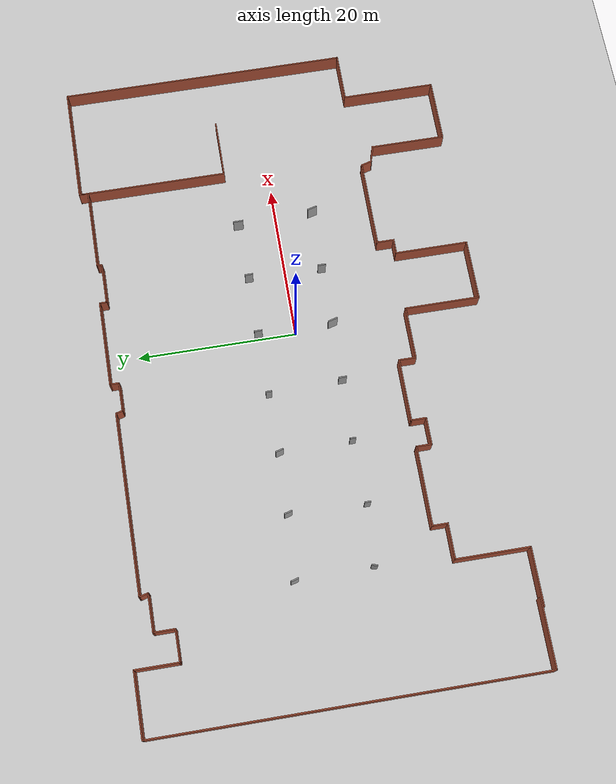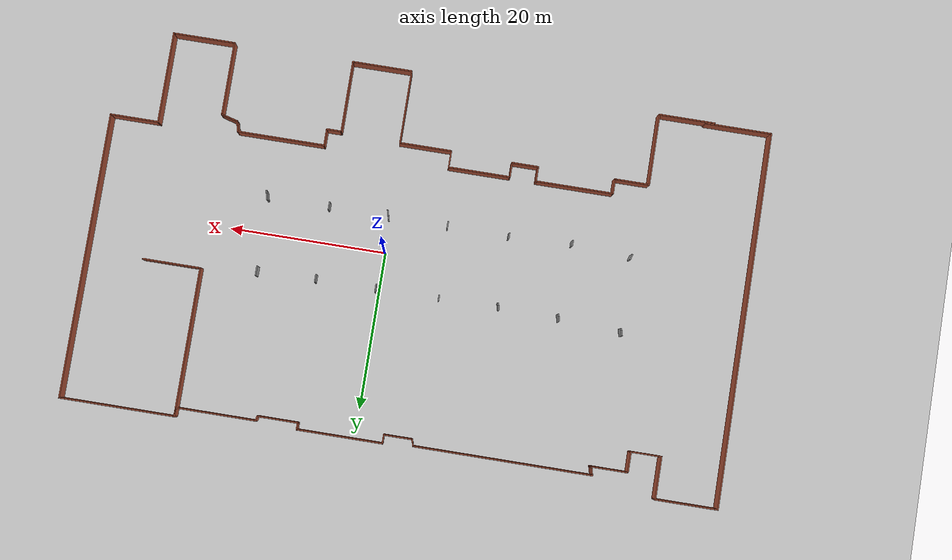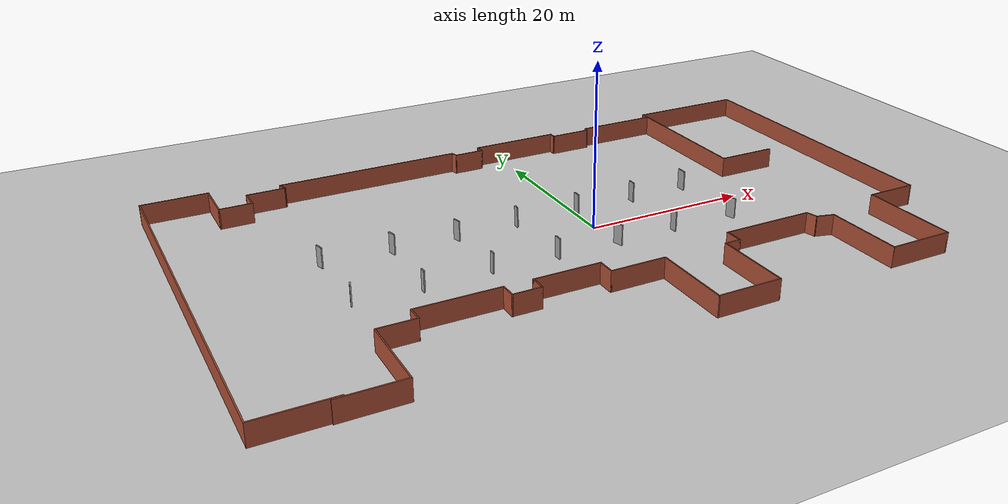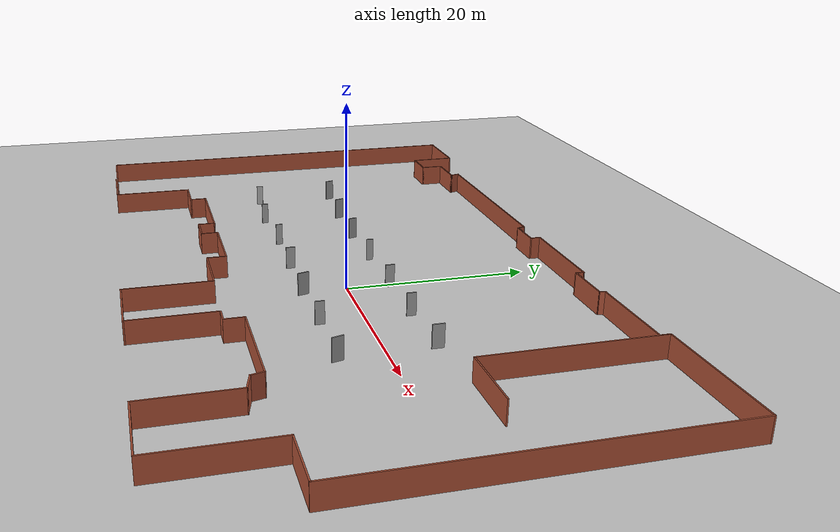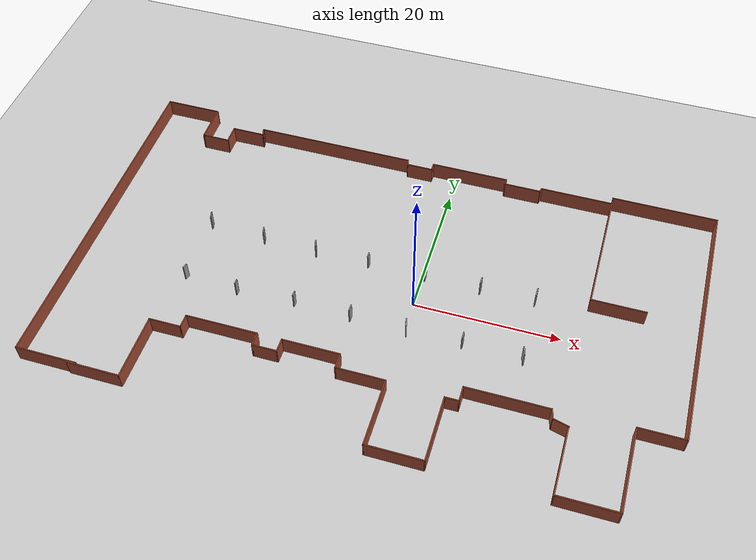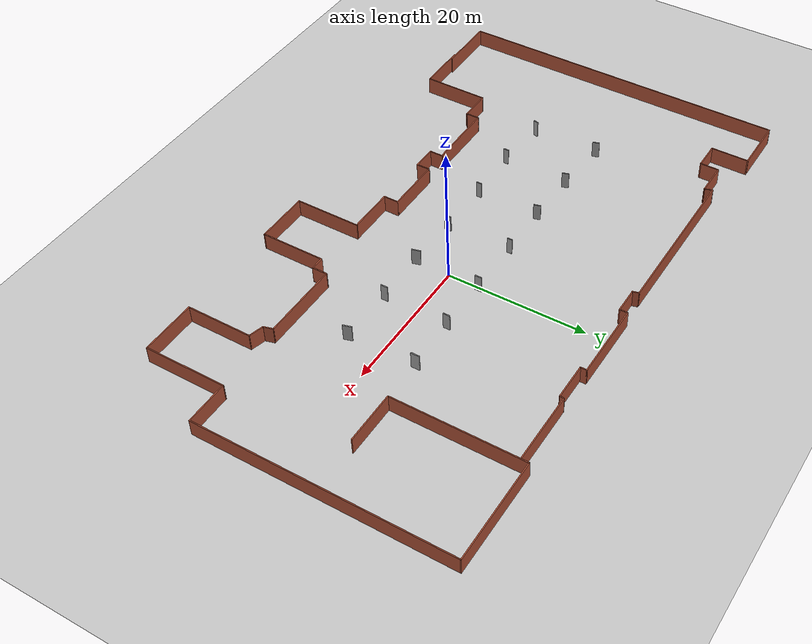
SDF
<sdf version="1.6">
 <world name="default">
  <plugin name="gazebo_connection_plugin" filename="libgazebo_connection_plugin.so"/>
  <light name="sun" type="directional">
   <pose>0 0 10 0 -0 0</pose>
   <diffuse>0.8 0.8 0.8 1</diffuse>
   <specular>0.2 0.2 0.2 1</specular>
   <attenuation>
    <range>1000</range>
    <constant>0.9</constant>
    <linear>0.01</linear>
    <quadratic>0.001</quadratic>
   </attenuation>
   <direction>-0.5 0.1 -0.9</direction>
  </light>
  <model name="ground_plane">
   <static>1</static>
   <link name="link">
    <collision name="collision">
     <geometry><plane><normal>0 0 1</normal><size>100 100</size></plane></geometry>
     <surface><friction><ode><mu>100</mu><mu2>50</mu2></ode></friction></surface>
    </collision>
    <visual name="visual">
     <cast_shadows>0</cast_shadows>
     <geometry><plane><normal>0 0 1</normal><size>100 100</size></plane></geometry>
     <material>
      <script><uri>file://media/materials/scripts/gazebo.material</uri><name>Gazebo/Grey</name></script>
     </material>
    </visual>
   </link>
  </model>
  <gravity>0 0 -9.8</gravity>
  <magnetic_field>6e-06 2.3e-05 -4.2e-05</magnetic_field>
  <atmosphere type="adiabatic"/>
  <physics name="default_physics" default="0" type="ode">
   <max_step_size>0.001</max_step_size>
   <real_time_factor>1</real_time_factor>
   <real_time_update_rate>1000</real_time_update_rate>
  </physics>
  <scene><ambient>0.4 0.4 0.4 1</ambient><background>0.7 0.7 0.7 1</background><shadows>1</shadows></scene>
  <spherical_coordinates>
   <surface_model>EARTH_WGS84</surface_model>
   <latitude_deg>0</latitude_deg>
   <longitude_deg>0</longitude_deg>
   <elevation>0</elevation>
   <heading_deg>0</heading_deg>
  </spherical_coordinates>
  <model name="envD">
   <pose>-4.40285 0.889359 0 0 -0 0</pose>
   <link name="Wall_15">
    <collision name="Wall_15_Collision">
     <geometry><box><size>7.25 0.15 2.5</size></box></geometry>
     <pose>0 0 1.25 0 -0 0</pose>
    </collision>
    <visual name="Wall_15_Visual">
     <pose>0 0 1.25 0 -0 0</pose>
     <geometry><box><size>7.25 0.15 2.5</size></box></geometry>
     <material>
      <script><uri>file://media/materials/scripts/gazebo.material</uri><name>Gazebo/Bricks</name></script>
      <ambient>1 1 1 1</ambient>
     </material>
     <meta><layer>0</layer></meta>
    </visual>
    <pose>-30.8076 -23.7657 0 0 -0 0</pose>
   </link>
   <link name="Wall_16">
    <collision name="Wall_16_Collision">
     <geometry><box><size>9.25 0.15 2.5</size></box></geometry>
     <pose>0 0 1.25 0 -0 0</pose>
    </collision>
    <visual name="Wall_16_Visual">
     <pose>0 0 1.25 0 -0 0</pose>
     <geometry><box><size>9.25 0.15 2.5</size></box></geometry>
     <material>
      <script><uri>file://media/materials/scripts/gazebo.material</uri><name>Gazebo/Bricks</name></script>
      <ambient>1 1 1 1</ambient>
     </material>
     <meta><layer>0</layer></meta>
    </visual>
    <pose>-27.2576 -19.2157 0 0 -0 1.5708</pose>
   </link>
   <link name="Wall_17">
    <collision name="Wall_17_Collision">
     <geometry><box><size>4.5 0.15 2.5</size></box></geometry>
     <pose>0 0 1.25 0 -0 0</pose>
    </collision>
    <visual name="Wall_17_Visual">
     <pose>0 0 1.25 0 -0 0</pose>
     <geometry><box><size>4.5 0.15 2.5</size></box></geometry>
     <material>
      <script><uri>file://media/materials/scripts/gazebo.material</uri><name>Gazebo/Bricks</name></script>
      <ambient>1 1 1 1</ambient>
     </material>
     <meta><layer>0</layer></meta>
    </visual>
    <pose>-25.0826 -14.6657 0 0 -0 0</pose>
   </link>
   <link name="Wall_18">
    <collision name="Wall_18_Collision">
     <geometry><box><size>2 0.15 2.5</size></box></geometry>
     <pose>0 0 1.25 0 -0 0</pose>
    </collision>
    <visual name="Wall_18_Visual">
     <pose>0 0 1.25 0 -0 0</pose>
     <geometry><box><size>2 0.15 2.5</size></box></geometry>
     <material>
      <script><uri>file://media/materials/scripts/gazebo.material</uri><name>Gazebo/Bricks</name></script>
      <ambient>1 1 1 1</ambient>
     </material>
     <meta><layer>0</layer></meta>
    </visual>
    <pose>-22.9076 -13.7407 0 0 -0 1.5708</pose>
   </link>
   <link name="Wall_19">
    <collision name="Wall_19_Collision">
     <geometry><box><size>10 0.15 2.5</size></box></geometry>
     <pose>0 0 1.25 0 -0 0</pose>
    </collision>
    <visual name="Wall_19_Visual">
     <pose>0 0 1.25 0 -0 0</pose>
     <geometry><box><size>10 0.15 2.5</size></box></geometry>
     <material>
      <script><uri>file://media/materials/scripts/gazebo.material</uri><name>Gazebo/Bricks</name></script>
      <ambient>1 1 1 1</ambient>
     </material>
     <meta><layer>0</layer></meta>
    </visual>
    <pose>-17.9826 -12.8157 0 0 -0 0</pose>
   </link>
   <link name="Wall_20">
    <collision name="Wall_20_Collision">
     <geometry><box><size>2 0.15 2.5</size></box></geometry>
     <pose>0 0 1.25 0 -0 0</pose>
    </collision>
    <visual name="Wall_20_Visual">
     <pose>0 0 1.25 0 -0 0</pose>
     <geometry><box><size>2 0.15 2.5</size></box></geometry>
     <material>
      <script><uri>file://media/materials/scripts/gazebo.material</uri><name>Gazebo/Bricks</name></script>
      <ambient>1 1 1 1</ambient>
     </material>
     <meta><layer>0</layer></meta>
    </visual>
    <pose>-13.0576 -13.7407 0 0 0 -1.5708</pose>
   </link>
   <link name="Wall_21">
    <collision name="Wall_21_Collision">
     <geometry><box><size>3.5 0.15 2.5</size></box></geometry>
     <pose>0 0 1.25 0 -0 0</pose>
    </collision>
    <visual name="Wall_21_Visual">
     <pose>0 0 1.25 0 -0 0</pose>
     <geometry><box><size>3.5 0.15 2.5</size></box></geometry>
     <material>
      <script><uri>file://media/materials/scripts/gazebo.material</uri><name>Gazebo/Bricks</name></script>
      <ambient>1 1 1 1</ambient>
     </material>
     <meta><layer>0</layer></meta>
    </visual>
    <pose>-11.3826 -14.6657 0 0 -0 0</pose>
   </link>
   <link name="Wall_22">
    <collision name="Wall_22_Collision">
     <geometry><box><size>2 0.15 2.5</size></box></geometry>
     <pose>0 0 1.25 0 -0 0</pose>
    </collision>
    <visual name="Wall_22_Visual">
     <pose>0 0 1.25 0 -0 0</pose>
     <geometry><box><size>2 0.15 2.5</size></box></geometry>
     <material>
      <script><uri>file://media/materials/scripts/gazebo.material</uri><name>Gazebo/Bricks</name></script>
      <ambient>1 1 1 1</ambient>
     </material>
     <meta><layer>0</layer></meta>
    </visual>
    <pose>-9.70756 -13.7407 0 0 -0 1.5708</pose>
   </link>
   <link name="Wall_23">
    <collision name="Wall_23_Collision">
     <geometry><box><size>8 0.15 2.5</size></box></geometry>
     <pose>0 0 1.25 0 -0 0</pose>
    </collision>
    <visual name="Wall_23_Visual">
     <pose>0 0 1.25 0 -0 0</pose>
     <geometry><box><size>8 0.15 2.5</size></box></geometry>
     <material>
      <script><uri>file://media/materials/scripts/gazebo.material</uri><name>Gazebo/Bricks</name></script>
      <ambient>1 1 1 1</ambient>
     </material>
     <meta><layer>0</layer></meta>
    </visual>
    <pose>-5.78256 -12.8157 0 0 -0 0</pose>
   </link>
   <link name="Wall_24">
    <collision name="Wall_24_Collision">
     <geometry><box><size>2.25 0.15 2.5</size></box></geometry>
     <pose>0 0 1.25 0 -0 0</pose>
    </collision>
    <visual name="Wall_24_Visual">
     <pose>0 0 1.25 0 -0 0</pose>
     <geometry><box><size>2.25 0.15 2.5</size></box></geometry>
     <material>
      <script><uri>file://media/materials/scripts/gazebo.material</uri><name>Gazebo/Bricks</name></script>
      <ambient>1 1 1 1</ambient>
     </material>
     <meta><layer>0</layer></meta>
    </visual>
    <pose>-1.85756 -13.8657 0 0 0 -1.5708</pose>
   </link>
   <link name="Wall_25">
    <collision name="Wall_25_Collision">
     <geometry><box><size>6.75 0.15 2.5</size></box></geometry>
     <pose>0 0 1.25 0 -0 0</pose>
    </collision>
    <visual name="Wall_25_Visual">
     <pose>0 0 1.25 0 -0 0</pose>
     <geometry><box><size>6.75 0.15 2.5</size></box></geometry>
     <material>
      <script><uri>file://media/materials/scripts/gazebo.material</uri><name>Gazebo/Bricks</name></script>
      <ambient>1 1 1 1</ambient>
     </material>
     <meta><layer>0</layer></meta>
    </visual>
    <pose>1.44244 -14.9157 0 0 -0 0</pose>
   </link>
   <link name="Wall_26">
    <collision name="Wall_26_Collision">
     <geometry><box><size>9.5 0.15 2.5</size></box></geometry>
     <pose>0 0 1.25 0 -0 0</pose>
    </collision>
    <visual name="Wall_26_Visual">
     <pose>0 0 1.25 0 -0 0</pose>
     <geometry><box><size>9.5 0.15 2.5</size></box></geometry>
     <material>
      <script><uri>file://media/materials/scripts/gazebo.material</uri><name>Gazebo/Bricks</name></script>
      <ambient>1 1 1 1</ambient>
     </material>
     <meta><layer>0</layer></meta>
    </visual>
    <pose>4.74244 -19.5907 0 0 0 -1.5708</pose>
   </link>
   <link name="Wall_27">
    <collision name="Wall_27_Collision">
     <geometry><box><size>7.75 0.15 2.5</size></box></geometry>
     <pose>0 0 1.25 0 -0 0</pose>
    </collision>
    <visual name="Wall_27_Visual">
     <pose>0 0 1.25 0 -0 0</pose>
     <geometry><box><size>7.75 0.15 2.5</size></box></geometry>
     <material>
      <script><uri>file://media/materials/scripts/gazebo.material</uri><name>Gazebo/Bricks</name></script>
      <ambient>1 1 1 1</ambient>
     </material>
     <meta><layer>0</layer></meta>
    </visual>
    <pose>8.54244 -24.2657 0 0 -0 0</pose>
   </link>
   <link name="Wall_28">
    <collision name="Wall_28_Collision">
     <geometry><box><size>9.25 0.15 2.5</size></box></geometry>
     <pose>0 0 1.25 0 -0 0</pose>
    </collision>
    <visual name="Wall_28_Visual">
     <pose>0 0 1.25 0 -0 0</pose>
     <geometry><box><size>9.25 0.15 2.5</size></box></geometry>
     <material>
      <script><uri>file://media/materials/scripts/gazebo.material</uri><name>Gazebo/Bricks</name></script>
      <ambient>1 1 1 1</ambient>
     </material>
     <meta><layer>0</layer></meta>
    </visual>
    <pose>12.3424 -19.7157 0 0 -0 1.5708</pose>
   </link>
   <link name="Wall_29">
    <collision name="Wall_29_Collision">
     <geometry><box><size>2 0.15 2.5</size></box></geometry>
     <pose>0 0 1.25 0 -0 0</pose>
    </collision>
    <visual name="Wall_29_Visual">
     <pose>0 0 1.25 0 -0 0</pose>
     <geometry><box><size>2 0.15 2.5</size></box></geometry>
     <material>
      <script><uri>file://media/materials/scripts/gazebo.material</uri><name>Gazebo/Bricks</name></script>
      <ambient>1 1 1 1</ambient>
     </material>
     <meta><layer>0</layer></meta>
    </visual>
    <pose>13.2674 -15.1657 0 0 -0 0</pose>
   </link>
   <link name="Wall_30">
    <collision name="Wall_30_Collision">
     <geometry><box><size>2.25 0.15 2.5</size></box></geometry>
     <pose>0 0 1.25 0 -0 0</pose>
    </collision>
    <visual name="Wall_30_Visual">
     <pose>0 0 1.25 0 -0 0</pose>
     <geometry><box><size>2.25 0.15 2.5</size></box></geometry>
     <material>
      <script><uri>file://media/materials/scripts/gazebo.material</uri><name>Gazebo/Bricks</name></script>
      <ambient>1 1 1 1</ambient>
     </material>
     <meta><layer>0</layer></meta>
    </visual>
    <pose>14.1924 -14.1157 0 0 -0 1.5708</pose>
   </link>
   <link name="Wall_31">
    <collision name="Wall_31_Collision">
     <geometry><box><size>11.25 0.15 2.5</size></box></geometry>
     <pose>0 0 1.25 0 -0 0</pose>
    </collision>
    <visual name="Wall_31_Visual">
     <pose>0 0 1.25 0 -0 0</pose>
     <geometry><box><size>11.25 0.15 2.5</size></box></geometry>
     <material>
      <script><uri>file://media/materials/scripts/gazebo.material</uri><name>Gazebo/Bricks</name></script>
      <ambient>1 1 1 1</ambient>
     </material>
     <meta><layer>0</layer></meta>
    </visual>
    <pose>19.7424 -13.0657 0 0 -0 0</pose>
   </link>
   <link name="Wall_32">
    <collision name="Wall_32_Collision">
     <geometry><box><size>1.5 0.15 2.5</size></box></geometry>
     <pose>0 0 1.25 0 -0 0</pose>
    </collision>
    <visual name="Wall_32_Visual">
     <pose>0 0 1.25 0 -0 0</pose>
     <geometry><box><size>1.5 0.15 2.5</size></box></geometry>
     <material>
      <script><uri>file://media/materials/scripts/gazebo.material</uri><name>Gazebo/Bricks</name></script>
      <ambient>1 1 1 1</ambient>
     </material>
     <meta><layer>0</layer></meta>
    </visual>
    <pose>25.4671 -13.7177 0 0 0 -1.309</pose>
   </link>
   <link name="Wall_33">
    <collision name="Wall_33_Collision">
     <geometry><box><size>2.25 0.15 2.5</size></box></geometry>
     <pose>0 0 1.25 0 -0 0</pose>
    </collision>
    <visual name="Wall_33_Visual">
     <pose>0 0 1.25 0 -0 0</pose>
     <geometry><box><size>2.25 0.15 2.5</size></box></geometry>
     <material>
      <script><uri>file://media/materials/scripts/gazebo.material</uri><name>Gazebo/Bricks</name></script>
      <ambient>1 1 1 1</ambient>
     </material>
     <meta><layer>0</layer></meta>
    </visual>
    <pose>26.6561 -14.6415 0 0 0 -0.261799</pose>
   </link>
   <link name="Wall_34">
    <collision name="Wall_34_Collision">
     <geometry><box><size>9.5 0.15 2.5</size></box></geometry>
     <pose>0 0 1.25 0 -0 0</pose>
    </collision>
    <visual name="Wall_34_Visual">
     <pose>0 0 1.25 0 -0 0</pose>
     <geometry><box><size>9.5 0.15 2.5</size></box></geometry>
     <material>
      <script><uri>file://media/materials/scripts/gazebo.material</uri><name>Gazebo/Bricks</name></script>
      <ambient>1 1 1 1</ambient>
     </material>
     <meta><layer>0</layer></meta>
    </visual>
    <pose>27.6703 -19.5882 0 0 0 -1.5708</pose>
   </link>
   <link name="Wall_35">
    <collision name="Wall_35_Collision">
     <geometry><box><size>8 0.15 2.5</size></box></geometry>
     <pose>0 0 1.25 0 -0 0</pose>
    </collision>
    <visual name="Wall_35_Visual">
     <pose>0 0 1.25 0 -0 0</pose>
     <geometry><box><size>8 0.15 2.5</size></box></geometry>
     <material>
      <script><uri>file://media/materials/scripts/gazebo.material</uri><name>Gazebo/Bricks</name></script>
      <ambient>1 1 1 1</ambient>
     </material>
     <meta><layer>0</layer></meta>
    </visual>
    <pose>31.5953 -24.2632 0 0 -0 0</pose>
   </link>
   <link name="Wall_36">
    <collision name="Wall_36_Collision">
     <geometry><box><size>11.75 0.15 2.5</size></box></geometry>
     <pose>0 0 1.25 0 -0 0</pose>
    </collision>
    <visual name="Wall_36_Visual">
     <pose>0 0 1.25 0 -0 0</pose>
     <geometry><box><size>11.75 0.15 2.5</size></box></geometry>
     <material>
      <script><uri>file://media/materials/scripts/gazebo.material</uri><name>Gazebo/Bricks</name></script>
      <ambient>1 1 1 1</ambient>
     </material>
     <meta><layer>0</layer></meta>
    </visual>
    <pose>35.5203 -18.4632 0 0 -0 1.5708</pose>
   </link>
   <link name="Wall_37">
    <collision name="Wall_37_Collision">
     <geometry><box><size>6.25 0.15 2.5</size></box></geometry>
     <pose>0 0 1.25 0 -0 0</pose>
    </collision>
    <visual name="Wall_37_Visual">
     <pose>0 0 1.25 0 -0 0</pose>
     <geometry><box><size>6.25 0.15 2.5</size></box></geometry>
     <material>
      <script><uri>file://media/materials/scripts/gazebo.material</uri><name>Gazebo/Bricks</name></script>
      <ambient>1 1 1 1</ambient>
     </material>
     <meta><layer>0</layer></meta>
    </visual>
    <pose>38.5703 -12.6632 0 0 -0 0</pose>
   </link>
   <link name="Wall_38">
    <collision name="Wall_38_Collision">
     <geometry><box><size>36.5 0.15 2.5</size></box></geometry>
     <pose>0 0 1.25 0 -0 0</pose>
    </collision>
    <visual name="Wall_38_Visual">
     <pose>0 0 1.25 0 -0 0</pose>
     <geometry><box><size>36.5 0.15 2.5</size></box></geometry>
     <material>
      <script><uri>file://media/materials/scripts/gazebo.material</uri><name>Gazebo/Bricks</name></script>
      <ambient>1 1 1 1</ambient>
     </material>
     <meta><layer>0</layer></meta>
    </visual>
    <pose>41.6203 5.51176 0 0 -0 1.5708</pose>
   </link>
   <link name="Wall_39">
    <collision name="Wall_39_Collision">
     <geometry><box><size>14.75 0.15 2.5</size></box></geometry>
     <pose>0 0 1.25 0 -0 0</pose>
    </collision>
    <visual name="Wall_39_Visual">
     <pose>0 0 1.25 0 -0 0</pose>
     <geometry><box><size>14.75 0.15 2.5</size></box></geometry>
     <material>
      <script><uri>file://media/materials/scripts/gazebo.material</uri><name>Gazebo/Bricks</name></script>
      <ambient>1 1 1 1</ambient>
     </material>
     <meta><layer>0</layer></meta>
    </visual>
    <pose>34.3203 23.6868 0 0 -0 3.14159</pose>
   </link>
   <link name="Wall_40">
    <collision name="Wall_40_Collision">
     <geometry><box><size>1.25 0.15 2.5</size></box></geometry>
     <pose>0 0 1.25 0 -0 0</pose>
    </collision>
    <visual name="Wall_40_Visual">
     <pose>0 0 1.25 0 -0 0</pose>
     <geometry><box><size>1.25 0.15 2.5</size></box></geometry>
     <material>
      <script><uri>file://media/materials/scripts/gazebo.material</uri><name>Gazebo/Bricks</name></script>
      <ambient>1 1 1 1</ambient>
     </material>
     <meta><layer>0</layer></meta>
    </visual>
    <pose>27.0203 23.1368 0 0 0 -1.5708</pose>
   </link>
   <link name="Wall_41">
    <collision name="Wall_41_Collision">
     <geometry><box><size>10.25 0.15 2.5</size></box></geometry>
     <pose>0 0 1.25 0 -0 0</pose>
    </collision>
    <visual name="Wall_41_Visual">
     <pose>0 0 1.25 0 -0 0</pose>
     <geometry><box><size>10.25 0.15 2.5</size></box></geometry>
     <material>
      <script><uri>file://media/materials/scripts/gazebo.material</uri><name>Gazebo/Bricks</name></script>
      <ambient>1 1 1 1</ambient>
     </material>
     <meta><layer>0</layer></meta>
    </visual>
    <pose>21.9703 22.5868 0 0 -0 3.14159</pose>
   </link>
   <link name="Wall_42">
    <collision name="Wall_42_Collision">
     <geometry><box><size>0.75 0.15 2.5</size></box></geometry>
     <pose>0 0 1.25 0 -0 0</pose>
    </collision>
    <visual name="Wall_42_Visual">
     <pose>0 0 1.25 0 -0 0</pose>
     <geometry><box><size>0.75 0.15 2.5</size></box></geometry>
     <material>
      <script><uri>file://media/materials/scripts/gazebo.material</uri><name>Gazebo/Bricks</name></script>
      <ambient>1 1 1 1</ambient>
     </material>
     <meta><layer>0</layer></meta>
    </visual>
    <pose>16.8426 22.297 0 0 0 -1.8326</pose>
   </link>
   <link name="Wall_43">
    <collision name="Wall_43_Collision">
     <geometry><box><size>5.25 0.15 2.5</size></box></geometry>
     <pose>0 0 1.25 0 -0 0</pose>
    </collision>
    <visual name="Wall_43_Visual">
     <pose>0 0 1.25 0 -0 0</pose>
     <geometry><box><size>5.25 0.15 2.5</size></box></geometry>
     <material>
      <script><uri>file://media/materials/scripts/gazebo.material</uri><name>Gazebo/Bricks</name></script>
      <ambient>1 1 1 1</ambient>
     </material>
     <meta><layer>0</layer></meta>
    </visual>
    <pose>14.215 22.0072 0 0 -0 3.14159</pose>
   </link>
   <link name="Wall_44">
    <collision name="Wall_44_Collision">
     <geometry><box><size>1 0.15 2.5</size></box></geometry>
     <pose>0 0 1.25 0 -0 0</pose>
    </collision>
    <visual name="Wall_44_Visual">
     <pose>0 0 1.25 0 -0 0</pose>
     <geometry><box><size>1 0.15 2.5</size></box></geometry>
     <material>
      <script><uri>file://media/materials/scripts/gazebo.material</uri><name>Gazebo/Bricks</name></script>
      <ambient>1 1 1 1</ambient>
     </material>
     <meta><layer>0</layer></meta>
    </visual>
    <pose>11.665 22.4322 0 0 -0 1.5708</pose>
   </link>
   <link name="Wall_45">
    <collision name="Wall_45_Collision">
     <geometry><box><size>11 0.15 2.5</size></box></geometry>
     <pose>0 0 1.25 0 -0 0</pose>
    </collision>
    <visual name="Wall_45_Visual">
     <pose>0 0 1.25 0 -0 0</pose>
     <geometry><box><size>11 0.15 2.5</size></box></geometry>
     <material>
      <script><uri>file://media/materials/scripts/gazebo.material</uri><name>Gazebo/Bricks</name></script>
      <ambient>1 1 1 1</ambient>
     </material>
     <meta><layer>0</layer></meta>
    </visual>
    <pose>6.24 22.8572 0 0 -0 3.14159</pose>
   </link>
   <link name="Wall_46">
    <collision name="Wall_46_Collision">
     <geometry><box><size>1.25 0.15 2.5</size></box></geometry>
     <pose>0 0 1.25 0 -0 0</pose>
    </collision>
    <visual name="Wall_46_Visual">
     <pose>0 0 1.25 0 -0 0</pose>
     <geometry><box><size>1.25 0.15 2.5</size></box></geometry>
     <material>
      <script><uri>file://media/materials/scripts/gazebo.material</uri><name>Gazebo/Bricks</name></script>
      <ambient>1 1 1 1</ambient>
     </material>
     <meta><layer>0</layer></meta>
    </visual>
    <pose>0.815003 22.3072 0 0 0 -1.5708</pose>
   </link>
   <link name="Wall_47">
    <collision name="Wall_47_Collision">
     <geometry><box><size>3.75 0.15 2.5</size></box></geometry>
     <pose>0 0 1.25 0 -0 0</pose>
    </collision>
    <visual name="Wall_47_Visual">
     <pose>0 0 1.25 0 -0 0</pose>
     <geometry><box><size>3.75 0.15 2.5</size></box></geometry>
     <material>
      <script><uri>file://media/materials/scripts/gazebo.material</uri><name>Gazebo/Bricks</name></script>
      <ambient>1 1 1 1</ambient>
     </material>
     <meta><layer>0</layer></meta>
    </visual>
    <pose>-0.984997 21.7572 0 0 -0 3.14159</pose>
   </link>
   <link name="Wall_48">
    <collision name="Wall_48_Collision">
     <geometry><box><size>1 0.15 2.5</size></box></geometry>
     <pose>0 0 1.25 0 -0 0</pose>
    </collision>
    <visual name="Wall_48_Visual">
     <pose>0 0 1.25 0 -0 0</pose>
     <geometry><box><size>1 0.15 2.5</size></box></geometry>
     <material>
      <script><uri>file://media/materials/scripts/gazebo.material</uri><name>Gazebo/Bricks</name></script>
      <ambient>1 1 1 1</ambient>
     </material>
     <meta><layer>0</layer></meta>
    </visual>
    <pose>-2.895 22.1677 0 0 -0 1.8326</pose>
   </link>
   <link name="Wall_49">
    <collision name="Wall_49_Collision">
     <geometry><box><size>22.75 0.15 2.5</size></box></geometry>
     <pose>0 0 1.25 0 -0 0</pose>
    </collision>
    <visual name="Wall_49_Visual">
     <pose>0 0 1.25 0 -0 0</pose>
     <geometry><box><size>22.75 0.15 2.5</size></box></geometry>
     <material>
      <script><uri>file://media/materials/scripts/gazebo.material</uri><name>Gazebo/Bricks</name></script>
      <ambient>1 1 1 1</ambient>
     </material>
     <meta><layer>0</layer></meta>
    </visual>
    <pose>-14.305 22.5782 0 0 -0 3.14159</pose>
   </link>
   <link name="Wall_50">
    <collision name="Wall_50_Collision">
     <geometry><box><size>1.25 0.15 2.5</size></box></geometry>
     <pose>0 0 1.25 0 -0 0</pose>
    </collision>
    <visual name="Wall_50_Visual">
     <pose>0 0 1.25 0 -0 0</pose>
     <geometry><box><size>1.25 0.15 2.5</size></box></geometry>
     <material>
      <script><uri>file://media/materials/scripts/gazebo.material</uri><name>Gazebo/Bricks</name></script>
      <ambient>1 1 1 1</ambient>
     </material>
     <meta><layer>0</layer></meta>
    </visual>
    <pose>-25.4626 22.047 0 0 0 -1.309</pose>
   </link>
   <link name="Wall_51">
    <collision name="Wall_51_Collision">
     <geometry><box><size>4.75 0.15 2.5</size></box></geometry>
     <pose>0 0 1.25 0 -0 0</pose>
    </collision>
    <visual name="Wall_51_Visual">
     <pose>0 0 1.25 0 -0 0</pose>
     <geometry><box><size>4.75 0.15 2.5</size></box></geometry>
     <material>
      <script><uri>file://media/materials/scripts/gazebo.material</uri><name>Gazebo/Bricks</name></script>
      <ambient>1 1 1 1</ambient>
     </material>
     <meta><layer>0</layer></meta>
    </visual>
    <pose>-27.6203 21.5157 0 0 -0 3.14159</pose>
   </link>
   <link name="Wall_52">
    <collision name="Wall_52_Collision">
     <geometry><box><size>2.75 0.15 2.5</size></box></geometry>
     <pose>0 0 1.25 0 -0 0</pose>
    </collision>
    <visual name="Wall_52_Visual">
     <pose>0 0 1.25 0 -0 0</pose>
     <geometry><box><size>2.75 0.15 2.5</size></box></geometry>
     <material>
      <script><uri>file://media/materials/scripts/gazebo.material</uri><name>Gazebo/Bricks</name></script>
      <ambient>1 1 1 1</ambient>
     </material>
     <meta><layer>0</layer></meta>
    </visual>
    <pose>-29.9203 20.2157 0 0 0 -1.5708</pose>
   </link>
   <link name="Wall_53">
    <collision name="Wall_53_Collision">
     <geometry><box><size>4 0.15 2.5</size></box></geometry>
     <pose>0 0 1.25 0 -0 0</pose>
    </collision>
    <visual name="Wall_53_Visual">
     <pose>0 0 1.25 0 -0 0</pose>
     <geometry><box><size>4 0.15 2.5</size></box></geometry>
     <material>
      <script><uri>file://media/materials/scripts/gazebo.material</uri><name>Gazebo/Bricks</name></script>
      <ambient>1 1 1 1</ambient>
     </material>
     <meta><layer>0</layer></meta>
    </visual>
    <pose>-31.8453 18.9157 0 0 -0 3.14159</pose>
   </link>
   <link name="Wall_54">
    <collision name="Wall_54_Collision">
     <geometry><box><size>5.5 0.15 2.5</size></box></geometry>
     <pose>0 0 1.25 0 -0 0</pose>
    </collision>
    <visual name="Wall_54_Visual">
     <pose>0 0 1.25 0 -0 0</pose>
     <geometry><box><size>5.5 0.15 2.5</size></box></geometry>
     <material>
      <script><uri>file://media/materials/scripts/gazebo.material</uri><name>Gazebo/Bricks</name></script>
      <ambient>1 1 1 1</ambient>
     </material>
     <meta><layer>0</layer></meta>
    </visual>
    <pose>-33.7703 21.5907 0 0 -0 1.5708</pose>
   </link>
   <link name="Wall_55">
    <collision name="Wall_55_Collision">
     <geometry><box><size>8 0.15 2.5</size></box></geometry>
     <pose>0 0 1.25 0 -0 0</pose>
    </collision>
    <visual name="Wall_55_Visual">
     <pose>0 0 1.25 0 -0 0</pose>
     <geometry><box><size>8 0.15 2.5</size></box></geometry>
     <material>
      <script><uri>file://media/materials/scripts/gazebo.material</uri><name>Gazebo/Bricks</name></script>
      <ambient>1 1 1 1</ambient>
     </material>
     <meta><layer>0</layer></meta>
    </visual>
    <pose>-37.6953 24.2657 0 0 -0 3.14159</pose>
   </link>
   <link name="Wall_56">
    <collision name="Wall_56_Collision">
     <geometry><box><size>48 0.15 2.5</size></box></geometry>
     <pose>0 0 1.25 0 -0 0</pose>
    </collision>
    <visual name="Wall_56_Visual">
     <pose>0 0 1.25 0 -0 0</pose>
     <geometry><box><size>48 0.15 2.5</size></box></geometry>
     <material>
      <script><uri>file://media/materials/scripts/gazebo.material</uri><name>Gazebo/Bricks</name></script>
      <ambient>1 1 1 1</ambient>
     </material>
     <meta><layer>0</layer></meta>
    </visual>
    <pose>-41.6203 0.340719 0 0 0 -1.5708</pose>
   </link>
   <link name="Wall_57">
    <collision name="Wall_57_Collision">
     <geometry><box><size>8.5 0.15 2.5</size></box></geometry>
     <pose>0 0 1.25 0 -0 0</pose>
    </collision>
    <visual name="Wall_57_Visual">
     <pose>0 0 1.25 0 -0 0</pose>
     <geometry><box><size>8.5 0.15 2.5</size></box></geometry>
     <material>
      <script><uri>file://media/materials/scripts/gazebo.material</uri><name>Gazebo/Bricks</name></script>
      <ambient>1 1 1 1</ambient>
     </material>
     <meta><layer>0</layer></meta>
    </visual>
    <pose>-37.4453 -23.5843 0 0 -0 0</pose>
   </link>
   <link name="Wall_59">
    <collision name="Wall_59_Collision">
     <geometry><box><size>19 0.15 2.5</size></box></geometry>
     <pose>0 0 1.25 0 -0 0</pose>
    </collision>
    <visual name="Wall_59_Visual">
     <pose>0 0 1.25 0 -0 0</pose>
     <geometry><box><size>19 0.15 2.5</size></box></geometry>
     <material>
      <script><uri>file://media/materials/scripts/gazebo.material</uri><name>Gazebo/Bricks</name></script>
      <ambient>1 1 1 1</ambient>
     </material>
     <meta><layer>0</layer></meta>
    </visual>
    <pose>27.0203 14.2618 0 0 0 -1.5708</pose>
   </link>
   <link name="Wall_60">
    <collision name="Wall_60_Collision">
     <geometry><box><size>7.5 0.15 2.5</size></box></geometry>
     <pose>0 0 1.25 0 -0 0</pose>
    </collision>
    <visual name="Wall_60_Visual">
     <pose>0 0 1.25 0 -0 0</pose>
     <geometry><box><size>7.5 0.15 2.5</size></box></geometry>
     <material>
      <script><uri>file://media/materials/scripts/gazebo.material</uri><name>Gazebo/Bricks</name></script>
      <ambient>1 1 1 1</ambient>
     </material>
     <meta><layer>0</layer></meta>
    </visual>
    <pose>30.6953 4.83676 0 0 -0 0</pose>
   </link>
   <link name="Wall_62">
    <collision name="Wall_62_Collision">
     <geometry><box><size>1 0.15 2.5</size></box></geometry>
     <pose>0 0 1.25 0 -0 0</pose>
    </collision>
    <visual name="Wall_62_Visual">
     <pose>0 0 1.25 0 -0 0</pose>
     <geometry><box><size>1 0.15 2.5</size></box></geometry>
     <material>
      <script><uri>file://media/materials/scripts/gazebo.material</uri><name>Gazebo/Grey</name></script>
      <ambient>1 1 1 1</ambient>
     </material>
     <meta><layer>0</layer></meta>
    </visual>
    <pose>-26.5632 4.36568 0 0 0 -1.309</pose>
   </link>
   <link name="Wall_64">
    <collision name="Wall_64_Collision">
     <geometry><box><size>0.75 0.15 2.5</size></box></geometry>
     <pose>0 0 1.25 0 -0 0</pose>
    </collision>
    <visual name="Wall_64_Visual">
     <pose>0 0 1.25 0 -0 0</pose>
     <geometry><box><size>0.75 0.15 2.5</size></box></geometry>
     <material>
      <script><uri>file://media/materials/scripts/gazebo.material</uri><name>Gazebo/Grey</name></script>
      <ambient>1 1 1 1</ambient>
     </material>
     <meta><layer>0</layer></meta>
    </visual>
    <pose>-26.3849 -5.21052 0 0 0 -1.8326</pose>
   </link>
   <link name="Wall_66">
    <collision name="Wall_66_Collision">
     <geometry><box><size>1 0.15 2.5</size></box></geometry>
     <pose>0 0 1.25 0 -0 0</pose>
    </collision>
    <visual name="Wall_66_Visual">
     <pose>0 0 1.25 0 -0 0</pose>
     <geometry><box><size>1 0.15 2.5</size></box></geometry>
     <material>
      <script><uri>file://media/materials/scripts/gazebo.material</uri><name>Gazebo/Grey</name></script>
      <ambient>1 1 1 1</ambient>
     </material>
     <meta><layer>0</layer></meta>
    </visual>
    <pose>-18.5129 3.8168 0 0 0 -1.309</pose>
   </link>
   <link name="Wall_68">
    <collision name="Wall_68_Collision">
     <geometry><box><size>0.75 0.15 2.5</size></box></geometry>
     <pose>0 0 1.25 0 -0 0</pose>
    </collision>
    <visual name="Wall_68_Visual">
     <pose>0 0 1.25 0 -0 0</pose>
     <geometry><box><size>0.75 0.15 2.5</size></box></geometry>
     <material>
      <script><uri>file://media/materials/scripts/gazebo.material</uri><name>Gazebo/Grey</name></script>
      <ambient>1 1 1 1</ambient>
     </material>
     <meta><layer>0</layer></meta>
    </visual>
    <pose>-18.8059 -5.76962 0 0 0 -1.5708</pose>
   </link>
   <link name="Wall_70">
    <collision name="Wall_70_Collision">
     <geometry><box><size>1 0.15 2.5</size></box></geometry>
     <pose>0 0 1.25 0 -0 0</pose>
    </collision>
    <visual name="Wall_70_Visual">
     <pose>0 0 1.25 0 -0 0</pose>
     <geometry><box><size>1 0.15 2.5</size></box></geometry>
     <material>
      <script><uri>file://media/materials/scripts/gazebo.material</uri><name>Gazebo/Grey</name></script>
      <ambient>1 1 1 1</ambient>
     </material>
     <meta><layer>0</layer></meta>
    </visual>
    <pose>-10.8285 3.63383 0 0 0 -1.309</pose>
   </link>
   <link name="Wall_72">
    <collision name="Wall_72_Collision">
     <geometry><box><size>0.75 0.15 2.5</size></box></geometry>
     <pose>0 0 1.25 0 -0 0</pose>
    </collision>
    <visual name="Wall_72_Visual">
     <pose>0 0 1.25 0 -0 0</pose>
     <geometry><box><size>0.75 0.15 2.5</size></box></geometry>
     <material>
      <script><uri>file://media/materials/scripts/gazebo.material</uri><name>Gazebo/Grey</name></script>
      <ambient>1 1 1 1</ambient>
     </material>
     <meta><layer>0</layer></meta>
    </visual>
    <pose>-10.7556 -5.4037 0 0 0 -1.5708</pose>
   </link>
   <link name="Wall_74">
    <collision name="Wall_74_Collision">
     <geometry><box><size>0.75 0.15 2.5</size></box></geometry>
     <pose>0 0 1.25 0 -0 0</pose>
    </collision>
    <visual name="Wall_74_Visual">
     <pose>0 0 1.25 0 -0 0</pose>
     <geometry><box><size>0.75 0.15 2.5</size></box></geometry>
     <material>
      <script><uri>file://media/materials/scripts/gazebo.material</uri><name>Gazebo/Grey</name></script>
      <ambient>1 1 1 1</ambient>
     </material>
     <meta><layer>0</layer></meta>
    </visual>
    <pose>-3.25418 3.74435 0 0 0 -1.5708</pose>
   </link>
   <link name="Wall_76">
    <collision name="Wall_76_Collision">
     <geometry><box><size>1 0.15 2.5</size></box></geometry>
     <pose>0 0 1.25 0 -0 0</pose>
    </collision>
    <visual name="Wall_76_Visual">
     <pose>0 0 1.25 0 -0 0</pose>
     <geometry><box><size>1 0.15 2.5</size></box></geometry>
     <material>
      <script><uri>file://media/materials/scripts/gazebo.material</uri><name>Gazebo/Grey</name></script>
      <ambient>1 1 1 1</ambient>
     </material>
     <meta><layer>0</layer></meta>
    </visual>
    <pose>-2.88826 -5.5287 0 0 0 -1.5708</pose>
   </link>
   <link name="Wall_78">
    <collision name="Wall_78_Collision">
     <geometry><box><size>1 0.15 2.5</size></box></geometry>
     <pose>0 0 1.25 0 -0 0</pose>
    </collision>
    <visual name="Wall_78_Visual">
     <pose>0 0 1.25 0 -0 0</pose>
     <geometry><box><size>1 0.15 2.5</size></box></geometry>
     <material>
      <script><uri>file://media/materials/scripts/gazebo.material</uri><name>Gazebo/Grey</name></script>
      <ambient>1 1 1 1</ambient>
     </material>
     <meta><layer>0</layer></meta>
    </visual>
    <pose>4.79611 3.80232 0 0 0 -1.5708</pose>
   </link>
   <link name="Wall_80">
    <collision name="Wall_80_Collision">
     <geometry><box><size>1.25 0.15 2.5</size></box></geometry>
     <pose>0 0 1.25 0 -0 0</pose>
    </collision>
    <visual name="Wall_80_Visual">
     <pose>0 0 1.25 0 -0 0</pose>
     <geometry><box><size>1.25 0.15 2.5</size></box></geometry>
     <material>
      <script><uri>file://media/materials/scripts/gazebo.material</uri><name>Gazebo/Grey</name></script>
      <ambient>1 1 1 1</ambient>
     </material>
     <meta><layer>0</layer></meta>
    </visual>
    <pose>4.7555 -5.63496 0 0 0 -1.309</pose>
   </link>
   <link name="Wall_82">
    <collision name="Wall_82_Collision">
     <geometry><box><size>1 0.15 2.5</size></box></geometry>
     <pose>0 0 1.25 0 -0 0</pose>
    </collision>
    <visual name="Wall_82_Visual">
     <pose>0 0 1.25 0 -0 0</pose>
     <geometry><box><size>1 0.15 2.5</size></box></geometry>
     <material>
      <script><uri>file://media/materials/scripts/gazebo.material</uri><name>Gazebo/Grey</name></script>
      <ambient>1 1 1 1</ambient>
     </material>
     <meta><layer>0</layer></meta>
    </visual>
    <pose>12.4805 3.80232 0 0 0 -1.5708</pose>
   </link>
   <link name="Wall_84">
    <collision name="Wall_84_Collision">
     <geometry><box><size>1 0.15 2.5</size></box></geometry>
     <pose>0 0 1.25 0 -0 0</pose>
    </collision>
    <visual name="Wall_84_Visual">
     <pose>0 0 1.25 0 -0 0</pose>
     <geometry><box><size>1 0.15 2.5</size></box></geometry>
     <material>
      <script><uri>file://media/materials/scripts/gazebo.material</uri><name>Gazebo/Grey</name></script>
      <ambient>1 1 1 1</ambient>
     </material>
     <meta><layer>0</layer></meta>
    </visual>
    <pose>12.2975 -5.5287 0 0 0 -1.5708</pose>
   </link>
   <link name="Wall_86">
    <collision name="Wall_86_Collision">
     <geometry><box><size>1.25 0.15 2.5</size></box></geometry>
     <pose>0 0 1.25 0 -0 0</pose>
    </collision>
    <visual name="Wall_86_Visual">
     <pose>0 0 1.25 0 -0 0</pose>
     <geometry><box><size>1.25 0.15 2.5</size></box></geometry>
     <material>
      <script><uri>file://media/materials/scripts/gazebo.material</uri><name>Gazebo/Grey</name></script>
      <ambient>1 1 1 1</ambient>
     </material>
     <meta><layer>0</layer></meta>
    </visual>
    <pose>19.9819 4.04324 0 0 0 -1.5708</pose>
   </link>
   <link name="Wall_88">
    <collision name="Wall_88_Collision">
     <geometry><box><size>1.25 0.15 2.5</size></box></geometry>
     <pose>0 0 1.25 0 -0 0</pose>
    </collision>
    <visual name="Wall_88_Visual">
     <pose>0 0 1.25 0 -0 0</pose>
     <geometry><box><size>1.25 0.15 2.5</size></box></geometry>
     <material>
      <script><uri>file://media/materials/scripts/gazebo.material</uri><name>Gazebo/Grey</name></script>
      <ambient>1 1 1 1</ambient>
     </material>
     <meta><layer>0</layer></meta>
    </visual>
    <pose>20.3072 -5.63496 0 0 0 -1.309</pose>
   </link>
   <static>1</static>
  </model>
 </world>
</sdf>
